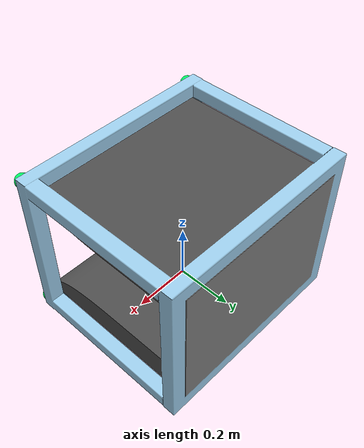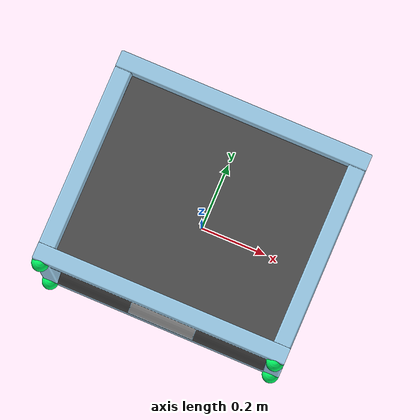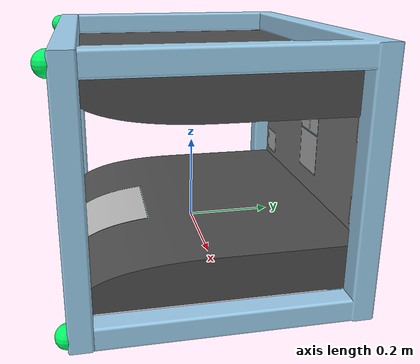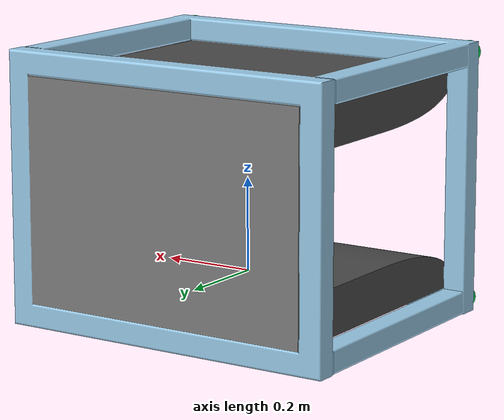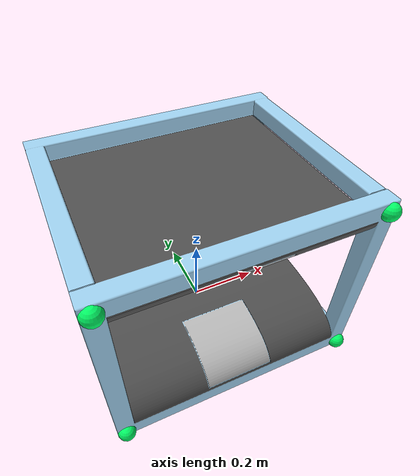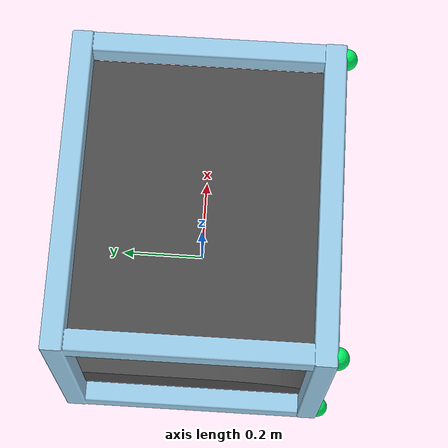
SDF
<?xml version="1.0"?>
<sdf version="1.6">
  <model name="docking_station">
    <static>true</static>

    <link name="link">
      <visual name="visual">
        <geometry>
          <mesh>
            <uri>model://docking_station/meshes/dock_station.dae</uri>
          </mesh>
        </geometry>
      </visual>
      <collision name="collision">
        <geometry>
          <mesh>
            <uri>model://docking_station/meshes/dock_station.dae</uri>
          </mesh>
        </geometry>
        <surface>
          <friction>
            <ode>
              <mu>0.01</mu>
              <mu2>0.01</mu2>
            </ode>
          </friction>
        </surface>
      </collision>
    </link>

    <link name="led_top_left">
      <pose>-0.35 -0.31 0.455 0 0 0</pose>
      <visual name="visual">
        <geometry>
          <sphere>
            <radius>0.025</radius>
          </sphere>
        </geometry>
        <material>
          <ambient>0 1 0.4 1</ambient>
          <diffuse>0 1 0.4 1</diffuse>
          <emissive>0 1 0.4 1</emissive>
        </material>
      </visual>
    </link>

    <link name="led_top_right">
      <pose>0.35 -0.31 0.455 0 0 0</pose>
      <visual name="visual">
        <geometry>
          <sphere>
            <radius>0.025</radius>
          </sphere>
        </geometry>
        <material>
          <ambient>0 1 0.4 1</ambient>
          <diffuse>0 1 0.4 1</diffuse>
          <emissive>0 1 0.4 1</emissive>
        </material>
      </visual>
    </link>

    <link name="led_bottom_left">
      <pose>-0.35 -0.31 -0.075 0 0 0</pose>
      <visual name="visual">
        <geometry>
          <sphere>
            <radius>0.025</radius>
          </sphere>
        </geometry>
        <material>
          <ambient>0 1 0.4 1</ambient>
          <diffuse>0 1 0.4 1</diffuse>
          <emissive>0 1 0.4 1</emissive>
        </material>
      </visual>
    </link>

    <link name="led_bottom_right">
      <pose>0.35 -0.31 -0.075 0 0 0</pose>
      <visual name="visual">
        <geometry>
          <sphere>
            <radius>0.025</radius>
          </sphere>
        </geometry>
        <material>
          <ambient>0 1 0.4 1</ambient>
          <diffuse>0 1 0.4 1</diffuse>
          <emissive>0 1 0.4 1</emissive>
        </material>
      </visual>
    </link>

    <plugin filename="gz-sim-pose-publisher-system"
            name="gz::sim::systems::PosePublisher">
      <publish_link_pose>true</publish_link_pose>
      <static_publisher>true</static_publisher>
      <static_update_frequency>1</static_update_frequency>
    </plugin>

  </model>
</sdf>
